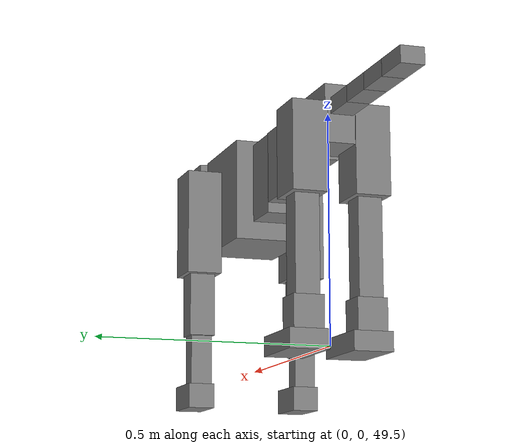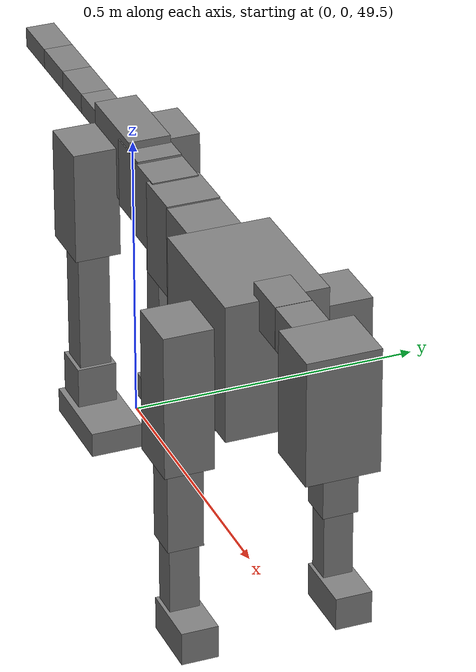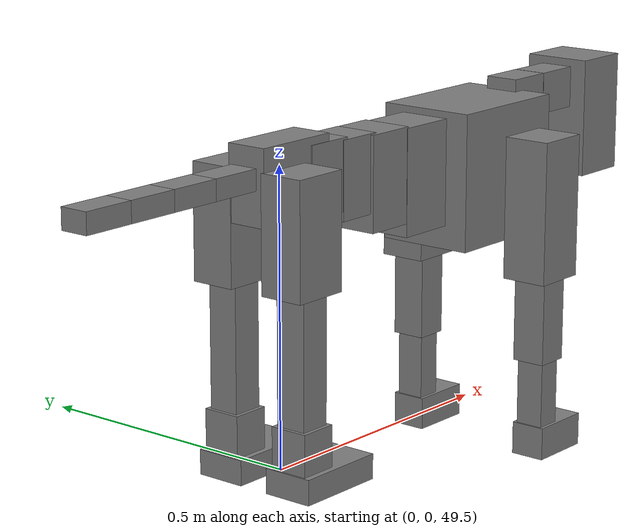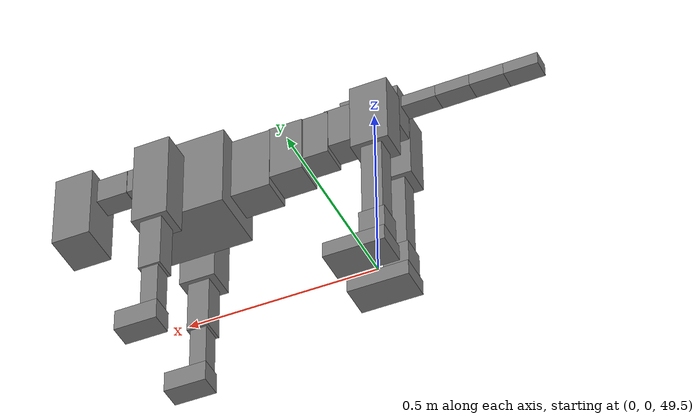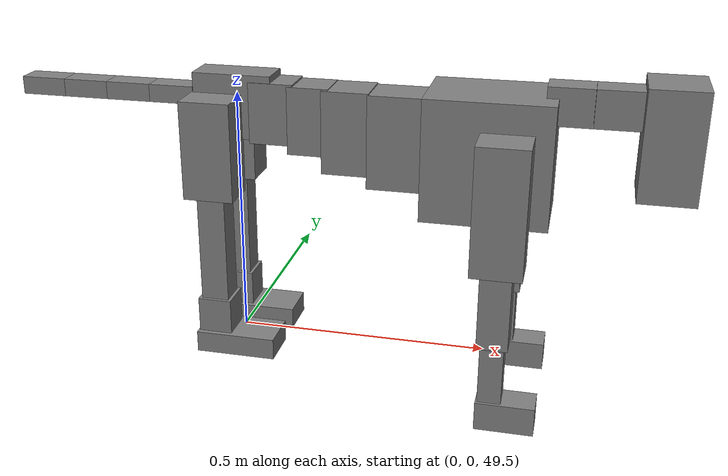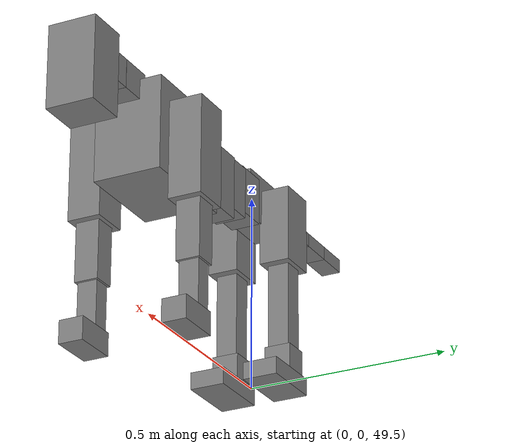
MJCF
<mujoco model="dog">

    <default>
        <joint armature="0.02" stiffness="1" damping="0.2" limited="true"/>
        <geom condim="3" friction="1 0.05 0.05" margin="0.01"/>
        <motor ctrllimited="true" ctrlrange="-1.0 1.0" forcelimited="true" gear="50"/>
    </default>

    <compiler inertiafromgeom="true" angle="radian"/>

    <option timestep="0.016" iterations="50" tolerance="1e-10" solver="Newton" jacobian="dense" cone="pyramidal"/>

    <size nconmax="20000" njmax="60000" nstack="5000000"/>
    <visual>
        <map force="0.1" zfar="30"/>
        <rgba haze="0.15 0.25 0.35 1"/>
        <quality shadowsize="2048"/>
        <global offwidth="800" offheight="800"/>
    </visual>

    <asset>
        <texture type="skybox" builtin="gradient" rgb1="0.3 0.5 0.7" rgb2="0 0 0" width="512" height="512"/>
        <texture name="texplane" type="2d" builtin="checker" rgb1=".2 .3 .4" rgb2=".1 0.15 0.2" width="512" height="512"
                 mark="cross" markrgb=".8 .8 .8"/>
        <texture name="texgeom" type="cube" builtin="flat" mark="cross" width="127" height="1278" rgb1="0.8 0.6 0.4"
                 rgb2="0.8 0.6 0.4" markrgb="1 1 1" random="0.01"/>

        <material name="matplane" reflectance="0.3" texture="texplane" texrepeat="1 1" texuniform="true"/>
        <material name="matgeom" texture="texgeom" texuniform="true" rgba="0.8 0.6 .4 1"/>
    </asset>

    <worldbody>
        <geom name="floor" pos="0 0 0" size="0 0 .25" type="plane" material="matplane" condim="3"/>

        <light directional="false" diffuse=".2 .2 .2" specular="0 0 0" pos="0 0 5" dir="0 0 -1" castshadow="false"/>
        <light mode="targetbodycom" target="torso" directional="false" diffuse=".8 .8 .8" specular="0.3 0.3 0.3"
               pos="0 0 4.0" dir="0 0 -1"/>

        <body name="root" pos="0 0 50">
            <freejoint name="root_1"/>
            <geom type="box" pos="0 0 -0.02" size="0.0774  0.0358  0.063" density="2030"/>

            <body name="spine1" pos="0.054 0 0">
                <joint name="spine1_y" axis="0 1 0" range="0 0.7" limited="true"/>
                <geom type="box" pos="0.02375 0 -0.03" size="0.04375  0.0375  0.05985" density="2030"/>

                <body name="spine2" pos="0.0612 0 0">
                    <joint name="spine2_y" axis="0 1 0" range="-0.15 0.15" limited="true"/>
                    <geom type="box" pos="0.03555  0  -0.04" size="0.04055  0.039  0.06615" density="2030"/>

                    <body name="spine3" pos="0.0730 0 0">
                        <joint name="spine3_y" axis="0 1 0" range="-0.15 0.15" limited="true"/>
                        <geom type="box" pos="0.03555  0  -0.057" size="0.04555  0.0445  0.081" density="2030"/>

                        <body name="spine4" pos="0.0780 0 0">
                            <joint name="spine4_y" axis="0 1 0" range="-0.15 0.15" limited="true"/>
                            <geom type="box" pos="0.05265  0  -0.07" size="0.05265  0.045  0.09135" density="2030"/>

                            <body name="torso" pos="0.1082 0 0">
                                <joint name="torso_y" axis="0 1 0" range="-0.15 0.15" limited="true"/>
                                <geom type="box" pos="0.11925  0  -0.085" size="0.11925  0.085  0.11745"
                                      density="2030"/>

                                <body name="neck1" pos="0.2160  0   0.0180">
                                    <joint name="neck1_y" axis="0 1 0" range="-1.2  -1" limited="true"/>
                                    <geom type="box" pos="0.0423  0  0" size="0.0423  0.03  0.036" density="2325"/>

                                    <body name="neck2" pos="0.0853  0  0">
                                        <joint name="neck2_y" axis="0 1 0" range="0.1  0" limited="true"/>
                                        <geom type="box" pos="0.0423  0  0" size="0.0423  0.03  0.036" density="2325"/>

                                        <body name="head" pos="0.0853  0  0">
                                            <joint name="head_y" axis="0 1 0" range="-0.3  -0.2" limited="true"/>
                                            <geom type="box" pos="0.0531  0  -0.055" size="0.0531  0.06  0.1044"
                                                  density="4030"/>

                                        </body>
                                    </body>
                                </body>

                                <body name="front_shoulder" pos="0.156  0   -0.0480">
                                    <joint name="front_shoulder_y" axis="0 1 0" range="-1 1.5" limited="true"/>
                                    <geom type="box" pos="0 0.13 -0.0965" size="0.0484  0.0413  0.1232" density="1158"/>
                                    <geom type="box" pos="0 -0.13 -0.0965" size="0.0484  0.0413  0.1232"
                                          density="1158"/>

                                    <body name="front_elbow" pos="0  0  -0.1931">
                                        <joint name="front_elbow_y" axis="0 1 0" range="-2 0" limited="true"/>
                                        <geom type="box" pos="0 0.13 -0.0869" size="0.0294  0.0300  0.0869"
                                              density="1081"/>
                                        <geom type="box" pos="0 -0.13 -0.0869" size="0.0294  0.0300  0.0869"
                                              density="1081"/>

                                        <body name="front_wrist" pos="0  0  -0.1738">
                                            <joint name="front_wrist_y" axis="0 1 0" range="-0.2 0" limited="true"/>
                                            <geom type="box" pos="0 0.13 -0.0648" size="0.0224  0.0249  0.0779"
                                                  density="1664"/>
                                            <geom type="box" pos="0 -0.13 -0.0648" size="0.0224  0.0249  0.0779"
                                                  density="1664"/>

                                            <body name="front_finger_end" pos="0  0  -0.1296">
                                                <joint name="front_finger_y" axis="0 1 0" range="-0.4 1"
                                                       limited="true"/>
                                                <geom type="box" pos="0.0308  0.13  -0.0135"
                                                      size="0.0564  0.0308  0.0285" density="1515"/>
                                                <geom type="box" pos="0.0308  -0.13  -0.0135"
                                                      size="0.0564  0.0308  0.0285" density="1515"/>

                                            </body>

                                        </body>
                                    </body>
                                </body>

                            </body>
                        </body>
                    </body>
                </body>
            </body>

            <body name="back_hip" pos="-0.03 0 -0.018">
                <joint name="back_hip_y" axis="0 1 0" range="-1.5 0.3" limited="true"/>
                <geom type="box" pos="0 0.07 -0.0741" size="0.0495  0.0388  0.0969" density="1154"/>
                <geom type="box" pos="0 -0.07 -0.0741" size="0.0495  0.0388  0.0969" density="1154"/>

                <body name="back_knee" pos="0  0  -0.1482">
                    <joint name="back_knee_y" axis="0 1 0" range="0 2.8" limited="true"/>
                    <geom type="box" pos="0 0.07 -0.1236" size="0.0273  0.0269  0.1392" density="1227"/>
                    <geom type="box" pos="0 -0.07 -0.1236" size="0.0273  0.0269  0.1392" density="1227"/>

                    <body name="back_ankle" pos="0  0  -0.2472">
                        <joint name="back_ankle_y" axis="0 1 0" range="-2.2 0" limited="true"/>
                        <geom type="box" pos="0 0.07 -0.0370" size="0.0334  0.0334  0.0483" density="1284"/>
                        <geom type="box" pos="0 -0.07 -0.0370" size="0.0334  0.0334  0.0483" density="1284"/>

                        <body name="back_toe_end" pos="0  0  -0.0741">
                            <joint name="back_toe_y" axis="0 1 0" range="-0.4 1" limited="true"/>
                            <geom type="box" pos="0.0437  0.07  -0.0063" size="0.0801  0.0437  0.0213" density="1515"/>
                            <geom type="box" pos="0.0437  -0.07  -0.0063" size="0.0801  0.0437  0.0213" density="1515"/>

                        </body>
                    </body>
                </body>
            </body>

            <body name="tail1" pos="-0.074 0 -0.006">
                <joint name="tail1_y" axis="0 1 0" range="-0.2 0.2" limited="true"/>
                <geom type="box" pos="-0.0536  0  0" size="0.045  0.025  0.0175" density="1587"/>

                <body name="tail2" pos="-0.09 0 0">
                    <joint name="tail2_y" axis="0 1 0" range="-0.2 0.2" limited="true"/>
                    <geom type="box" pos="-0.0536  0  0" size="0.045  0.025  0.0175" density="1587"/>

                    <body name="tail3" pos="-0.09 0 0">
                        <joint name="tail3_y" axis="0 1 0" range="-0.2 0.2" limited="true"/>
                        <geom type="box" pos="-0.0536  0  0" size="0.045  0.025  0.0175" density="1587"/>

                        <body name="tail4" pos="-0.09 0 0">
                            <joint name="tail4_y" axis="0 1 0" range="-0.2 0.2" limited="true"/>
                            <geom type="box" pos="-0.0536  0  0" size="0.045  0.025  0.0175" density="1587"/>

                        </body>
                    </body>
                </body>
            </body>
        </body>
    </worldbody>

    <actuator>
        <motor joint="spine1_y" forcerange="-150 150     "/>
        <motor joint="spine2_y" forcerange="-150 150     "/>
        <motor joint="spine3_y" forcerange="-150 150     "/>
        <motor joint="spine4_y" forcerange="-150 150     "/>
        <motor joint="torso_y" forcerange="-150 150     "/>
        <motor joint="neck1_y" forcerange="-100 100       "/>
        <motor joint="neck2_y" forcerange="-100 100       "/>
        <motor joint="head_y" forcerange="-150 150       "/>
        <motor joint="front_shoulder_y" forcerange="-177.78 197.76"/>
        <motor joint="front_elbow_y" forcerange="-191.62 126.64"/>
        <motor joint="front_wrist_y" forcerange="-125.69 73.51"/>
        <motor joint="front_finger_y" forcerange="-61.50 62.53"/>
        <motor joint="back_hip_y" forcerange="-386.18 331.14"/>
        <motor joint="back_knee_y" forcerange="-241.26 350.16"/>
        <motor joint="back_angle_y" forcerange="-244.32 190.67"/>
        <motor joint="back_toe_y" forcerange="-138.63 131.09"/>
        <motor joint="tail1_y" forcerange="-50 50     "/>
        <motor joint="tail2_y" forcerange="-50 50     "/>
        <motor joint="tail3_y" forcerange="-50 50     "/>
        <motor joint="tail4_y" forcerange="-50 50     "/>
    </actuator>
</mujoco>
